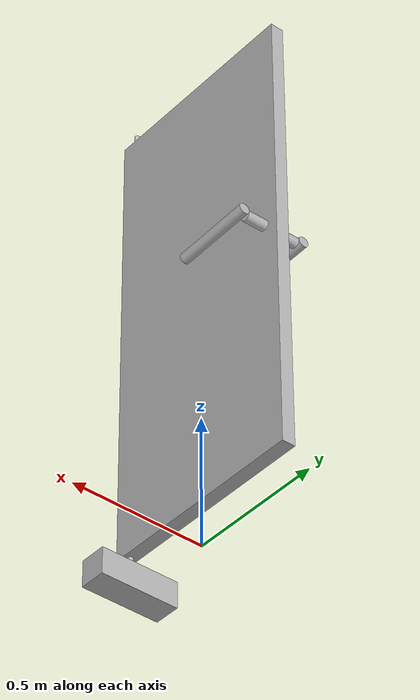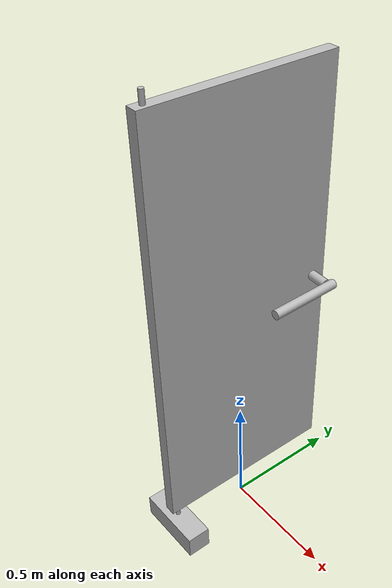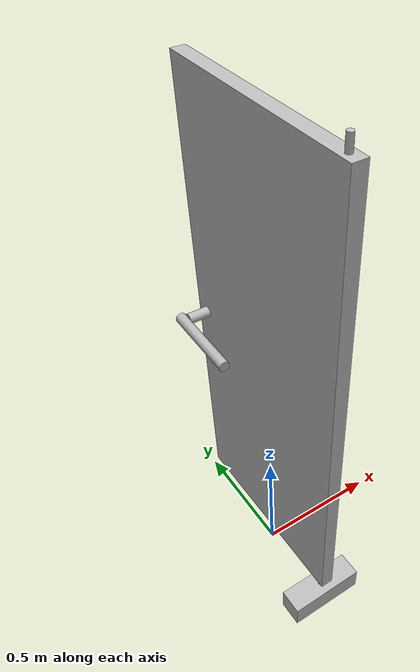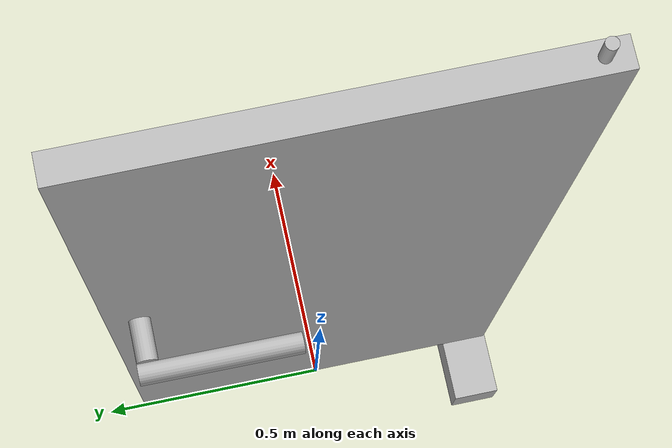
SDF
<?xml version="1.0"?>
<sdf version="1.6">
    <model name="impuls/axis_rotation_door">
        <static>false</static>
        <!--make a heavy base for the rotation of the door-->
        <link name="heavy_base">
			<!-- position the base such that the bottom touches the floor -->
			<pose>0 -0.35 0.05 0 0 0</pose>
			<inertial>
				<mass>200</mass>
				<!-- kg -->
				<inertia>
					<!-- (mass / 12) * (y*y + z*z) -->
					<ixx>8.4167</ixx>
					<ixy>0</ixy>
					<ixz>0</ixz>
					<!-- (mass / 12) * (x*x + z*z) -->
					<iyy>40.417</iyy>
					<iyz>0</iyz>
					<!-- (mass / 12) * (y*y + x*x) -->
					<izz>48.667</izz>
				</inertia>
			</inertial>
			<!-- Same geometry as visual -->
			<collision name="heavy_base_collision">
				<geometry>
					<box>
						<size>0.3 0.1 0.1</size>
					</box>
				</geometry>
			</collision>
			<!-- Same geometry as collision -->
			<visual name="heavy_base_visual">
				<geometry>
					<box>
						<size>0.3 0.1 0.1</size>
					</box>
				</geometry>
			</visual>
		</link>
        <!--make an axis of rotation-->
        <link name="axis_rotation_link">
            <pose>0 -0.35 1.05 0 0 0</pose>
            <collision name="axis_rotation_visual">
                <geometry>
                    <cylinder>
                            <length>1.90</length>
                            <radius>0.01</radius>
                    </cylinder>
                </geometry>
            </collision>
            <visual name="axis_rotation_visual">
                <geometry>
                    <cylinder>
                            <length>1.90</length>
                            <radius>0.01</radius>
                    </cylinder>
                </geometry>
            </visual>
        </link>
        <!--joint between axis of rotation and heavy base. They are fixed according to each other-->
        <joint name="avis_totation_link_to_heavy_base" type="fixed">
			<parent>heavy_base</parent>
			<child>axis_rotation_link</child>
		</joint>
        <!--make the door, it is juste a rectangle-->
        <link name="door_link">
            <pose>0 0.01 1.05 0 0 0</pose>
            <collision name="door_collision">
                <geometry>
                    <box>
                        <size>0.05 0.8 1.80</size>
                    </box>
                </geometry>
            </collision>
            <visual name="door_visual">
                <geometry>
                <box>
                    <size>0.05 0.8 1.80</size>
                </box>
                </geometry>
            </visual>
            <virtual_volume name = "door_vv">
                <geometry>
                    <box>
                        <size>0.05 0.8 1.80</size>
                    </box>
                </geometry>
            </virtual_volume>
        </link>
        <!--joint between the door and the axis of rotation. There is a rotation according to the z axis-->
        <joint name="door_link_to_axis_link" type="revolute">
			<parent>axis_rotation_link</parent>
			<child>door_link</child>
            <axis>
                <xyz>0 0 1</xyz>
                <dynamics>
                    <damping>0.5</damping>
                </dynamics>
                <limit>
                    <lower>-0.1</lower>
                    <upper>3.14159265</upper>
                    <effort>10</effort>
                    <velocity>-1</velocity>
                </limit>
            </axis>
            <pose>0 -0.35 0 0 0 0</pose>
		</joint>
        <!--make a handle-->
        <!--axis of rotation of the handle-->
        <link name="handle_rotation_link">
            <pose>0.065 0.35 1.06 0 1.6 0</pose>
            <collision name="handle_rotation_collision">
                <geometry>
                    <cylinder>
                        <length>0.08</length>
                        <radius>0.02</radius>
                    </cylinder>
                </geometry>
            </collision>
            <visual name="handle_rotation_visual">
                <geometry>
                    <cylinder>
                        <length>0.08</length>
                        <radius>0.02</radius>
                    </cylinder>
                </geometry>
            </visual>
        </link>
        <!--joint between the rotation axis of the handle and the door-->
        <joint name="handle_rotation_link_to_door_link" type="fixed">
			<parent>door_link</parent>
			<child>handle_rotation_link</child>
		</joint>
        <!--grabbing part of the handle-->
        <link name="handle_grabbing_link">
            <pose>0.125 0.22 1.06 1.6 0 0</pose>
            <collision name="handle_collision">
                <geometry>
                    <cylinder>
                        <length>0.3</length>
                        <radius>0.02</radius>
                    </cylinder>
                </geometry>
            </collision>
            <visual name="handle_visual">
                <geometry>
                    <cylinder>
                        <length>0.3</length>
                        <radius>0.02</radius>
                    </cylinder>
                </geometry>
            </visual>
        </link>
        <link name="handle_volume">
            <virtual_volume name="handle_vv">
                <geometry>
                    <box>
                        <size>0.2 0.12 0.12</size>
                    </box>
                </geometry>
                <pose>0.125 0.365 1.06 0 0 0</pose>
            </virtual_volume>
        </link>
        <link name="handle_behind_volume">
            <virtual_volume name="handle_behind_vv">
                <geometry>
                    <box>
                        <size>0.2 0.12 0.12</size>
                    </box>
                </geometry>
                <pose>-0.125 0.365 1.06 0 0 0</pose>
            </virtual_volume>
        </link>
        <!--let's add a frame left point and frame right point for the rgbd sensor-->
        <link name="frame_left_point">
             <virtual_volume name="frame_left_point_vv">
                <geometry>
                    <box>
                        <size>0.02 0.02 0.02</size>
                    </box>
                </geometry>
                <pose>0 0.465 0 0 0 0</pose>
            </virtual_volume>
        </link>
        <link name="frame_right_point">
            <virtual_volume name="frame_right_point_vv">
                <geometry>
                    <box>
                        <size>0.02 0.02 0.02</size>
                    </box>
                </geometry>
                <pose>0 -0.465 0 0 0 0</pose>
            </virtual_volume>
        </link>
        <!--joint between the axis of the handle and the grabbing part of the handle-->
        <joint name="handle_grabbing_link_to_handle_rotation_link" type="revolute">
			<parent>handle_rotation_link</parent>
			<child>handle_grabbing_link</child>
            <axis>
                <xyz>1 0 0</xyz>
                <dynamics>
                    <damping>0.5</damping>
                </dynamics>
                <use_parent_model_frame>1</use_parent_model_frame>
                <limit>
                    <lower>-0.1</lower>
                    <upper>3.14159265</upper>
                    <effort>10</effort>
                    <velocity>-1</velocity>
                </limit>
            </axis>
            <pose>0.125 0.35 0 0 0 0</pose>
		</joint>
        <!--make a handle on the other side-->
        <!--axis of rotation of the handle-->
        <link name="handle_rotation_link_side2">
            <pose>-0.065 0.35 1.06 0 1.6 0</pose>
            <collision name="handle_rotation_collision_side2">
                <geometry>
                    <cylinder>
                        <length>0.08</length>
                        <radius>0.02</radius>
                    </cylinder>
                </geometry>
            </collision>
            <visual name="handle_rotation_visual_side2">
                <geometry>
                    <cylinder>
                        <length>0.08</length>
                        <radius>0.02</radius>
                    </cylinder>
                </geometry>
            </visual>
        </link>
        <!--joint between the rotation axis of the handle and the door-->
        <joint name="handle_rotation_link_to_door_link_side2" type="fixed">
			<parent>door_link</parent>
			<child>handle_rotation_link_side2</child>
        </joint>
        <link name="handle_grabbing_link_side2">
            <pose>-0.125 0.22 1.06 1.6 0 0</pose>
            <collision name="handle_collision_side2">
                <geometry>
                    <cylinder>
                        <length>0.3</length>
                        <radius>0.02</radius>
                    </cylinder>
                </geometry>
            </collision>
            <visual name="handle_visual_side2">
                <geometry>
                    <cylinder>
                        <length>0.3</length>
                        <radius>0.02</radius>
                    </cylinder>
                </geometry>
            </visual>
        </link>
        <joint name="handle_grabbing_link_to_handle_rotation_link_side2" type="revolute">
			<parent>handle_rotation_link_side2</parent>
			<child>handle_grabbing_link_side2</child>
            <axis>
                <xyz>1 0 0</xyz>
                <dynamics>
                    <damping>0.5</damping>
                </dynamics>
                <use_parent_model_frame>1</use_parent_model_frame>
                <limit>
                    <lower>-0.1</lower>
                    <upper>3.14159265</upper>
                    <effort>10</effort>
                    <velocity>-1</velocity>
                </limit>
            </axis>
            <pose>-0.125 0.35 0 0 0 0</pose>
		</joint>
    </model>
</sdf>
